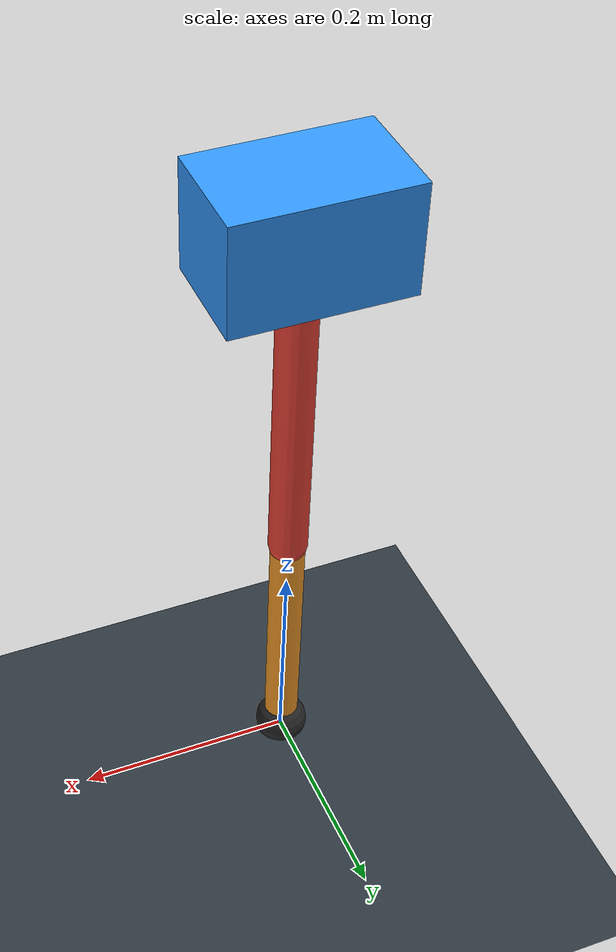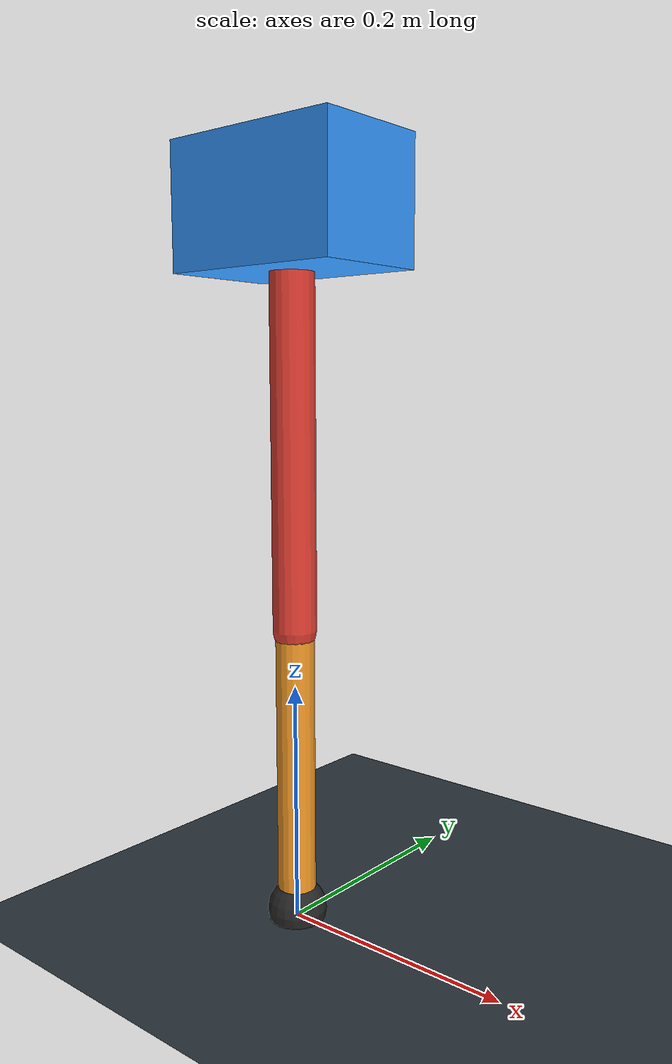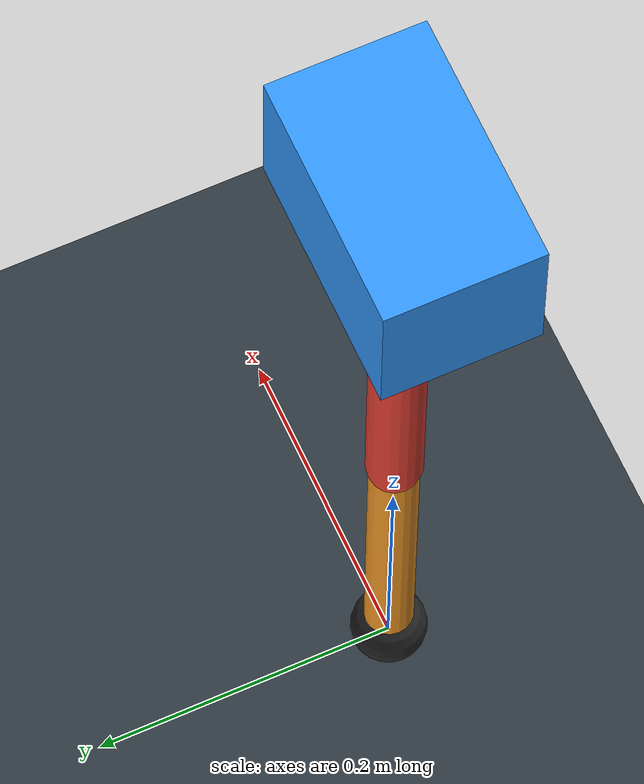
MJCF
<mujoco model="single_axis_two_bar">
  <compiler angle="radian" inertiafromgeom="true"/>
  <option timestep="0.001" integrator="implicitfast" gravity="0 0 -9.81"/>
  <default>
    <joint damping="0.08"/>
    <geom friction="1.2 0.01 0.0001" condim="3"/>
  </default>
  <worldbody>
    <geom name="floor" type="plane" size="5 5 0.1" rgba="0.18 0.22 0.25 1"/>
    <body name="carriage" pos="0 0 0.5815414703998081">
      <joint name="pole_slide" type="slide" axis="0 0 1"/>
      <geom name="payload" type="box" size="0.08 0.05 0.05" mass="2.6521436621583" rgba="0.2 0.6 1 1"/>
      <body name="thigh" pos="0 0 0">
        <joint name="hip" type="hinge" axis="0 1 0"/>
        <geom name="thigh_link" type="capsule" fromto="0 0 0 0 0 -0.333570917881149" size="0.018" mass="0.2376736867411098" rgba="0.9 0.25 0.2 1"/>
        <body name="shank" pos="0 0 -0.333570917881149">
          <joint name="knee" type="hinge" axis="0 1 0"/>
          <geom name="shank_link" type="capsule" fromto="0 0 0 0 0 -0.24018317531452932" size="0.016" mass="0.17113368615224997" rgba="0.95 0.6 0.15 1"/>
          <geom name="foot" type="sphere" pos="0 0 -0.24018317531452932" size="0.025" mass="0.03" rgba="0.15 0.15 0.15 1"/>
          <site name="toe" pos="0 0 -0.24018317531452932" size="0.008"/>
        </body>
      </body>
    </body>
  </worldbody>
  <actuator>
    <motor name="hip_motor" joint="hip" ctrlrange="-29.191862492486603 29.191862492486603"/>
    <motor name="knee_motor" joint="knee" ctrlrange="-86.10554196409085 86.10554196409085"/>
  </actuator>
</mujoco>
